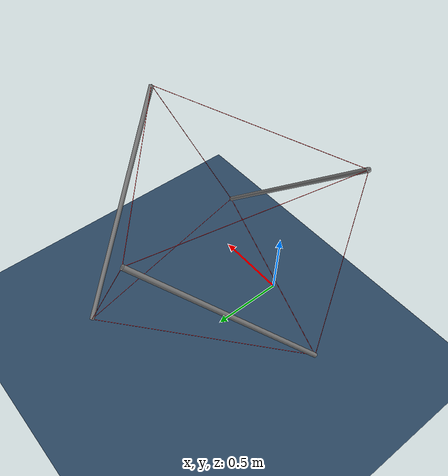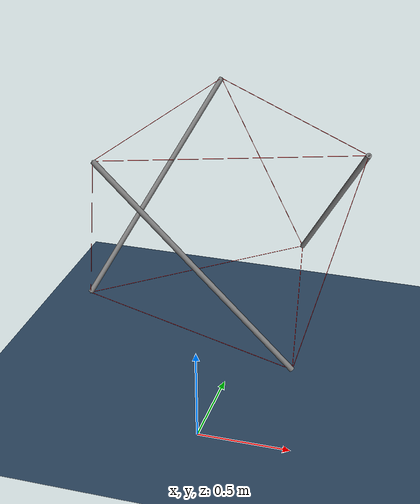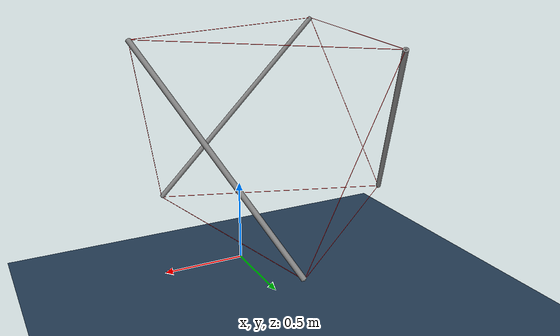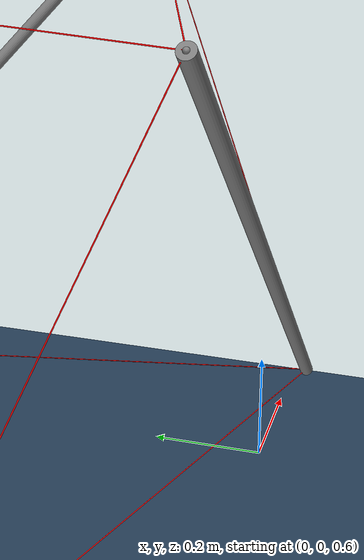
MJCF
<?xml version='1.0' encoding='utf-8'?>
<mujoco model="TT_test">
  <compiler angle="degree" coordinate="local" inertiafromgeom="true" />
  <option timestep="0.0001" integrator="RK4" gravity="0 0 -10">
    <flag contact="enable" energy="enable" />
  </option>
  <default>
    <geom conaffinity="1" condim="1" contype="1" margin="0.001" />
    <site type="sphere" size="0.005" />
    <tendon limited="true" range="0 10" width="0.001" rgba="1 0 0 1" stiffness="250.0" />
    <position ctrllimited="true" ctrlrange="-300 0.00" />
    <joint damping="1.0" armature="1.0" limited="false" />
  </default>
  <visual>
    <headlight diffuse="0.6 0.6 0.6" ambient="0.3 0.3 0.3" specular="0 0 0" />
    <rgba haze="0.15 0.25 0.35 1" />
    <global azimuth="150" elevation="-20" />
  </visual>
  <asset>
    <texture type="skybox" builtin="gradient" rgb1="0.3 0.5 0.7" rgb2="0 0 0" width="512" height="3072" />
    <texture type="2d" name="groundplane" builtin="checker" mark="edge" rgb1="0.2 0.3 0.4" rgb2="0.1 0.2 0.3" markrgb="0.8 0.8 0.8" width="300" height="300" />
    <material name="groundplane" texture="groundplane" texuniform="true" texrepeat="5 5" reflectance="0.2" />
  </asset>
  <worldbody>
    <light cutoff="100" diffuse="1 1 1" dir="-0 0 -1.3" directional="true" exponent="1" pos="0 0 1.3" specular=".1 .1 .1" />
    <geom name="floor" size="0 0 .125" type="plane" material="groundplane" conaffinity="15" condim="3" />
    <body name="rod2_4" pos="-0.25 0.433 0.5">
      <joint type="free" name="joint2_4" />
      <geom name="geom2_4" type="cylinder" fromto="-0.5 0.0 0.0 0.0 0.866 1.0" density="1000" size="0.014" />
      <site name="s2" pos="-0.5 0.0 0.0" />
      <site name="s4" pos="0.0 0.866 1.0" />
    </body>
    <body name="rod0_5" pos="0.0 0.0 0.5">
      <joint type="free" name="joint0_5" />
      <geom name="geom0_5" type="cylinder" fromto="0.5 0.0 0.0 -0.5 0.0 1.0" density="1000" size="0.014" />
      <site name="s0" pos="0.5 0.0 0.0" />
      <site name="s5" pos="-0.5 0.0 1.0" />
    </body>
    <body name="rod1_3" pos="0.25 0.433 0.5">
      <joint type="free" name="joint1_3" />
      <geom name="geom1_3" type="cylinder" fromto="0.0 0.866 0.0 0.5 0.0 1.0" density="1000" size="0.014" />
      <site name="s1" pos="0.0 0.866 0.0" />
      <site name="s3" pos="0.5 0.0 1.0" />
    </body>
  </worldbody>
  <tendon>
    <spatial name="td0_1">
      <site site="s0" />
      <site site="s1" />
    </spatial>
    <spatial name="td1_2">
      <site site="s1" />
      <site site="s2" />
    </spatial>
    <spatial name="td2_0">
      <site site="s2" />
      <site site="s0" />
    </spatial>
    <spatial name="td3_4">
      <site site="s3" />
      <site site="s4" />
    </spatial>
    <spatial name="td4_5">
      <site site="s4" />
      <site site="s5" />
    </spatial>
    <spatial name="td5_3">
      <site site="s5" />
      <site site="s3" />
    </spatial>
    <spatial name="td0_3">
      <site site="s0" />
      <site site="s3" />
    </spatial>
    <spatial name="td1_4">
      <site site="s1" />
      <site site="s4" />
    </spatial>
    <spatial name="td2_5">
      <site site="s2" />
      <site site="s5" />
    </spatial>
  </tendon>
</mujoco>
